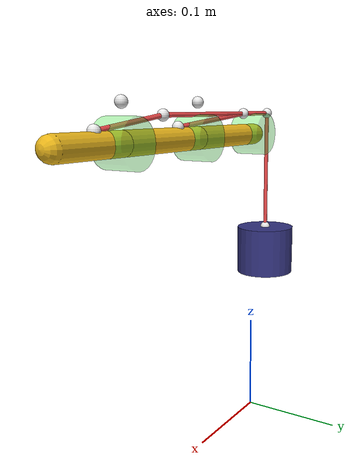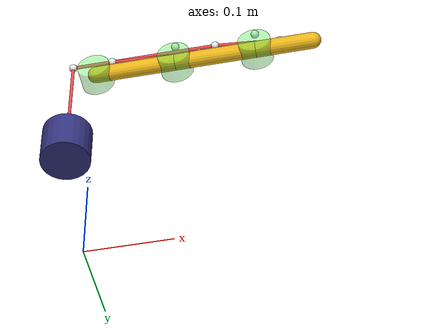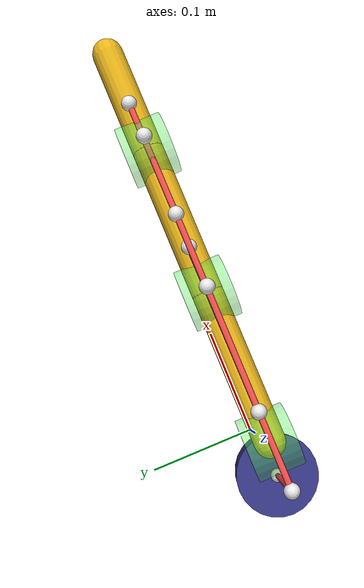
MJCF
<mujoco model="test">
    <compiler coordinate="global" />

    <default>
        <geom rgba=".9 .7 .1 1" size="0.01" />
        <site type="sphere" rgba=".9 .9 .9 1" size="0.005" />
        <joint type="hinge" axis="0 1 0" limited="true" range="0 60" solimplimit="0.95 0.95 0.1" />
    </default>

    <visual>
        <headlight diffuse=".7 .7 .7" />
    </visual>

    <worldbody>
        <body>
            <geom type="cylinder" fromto="-0.03 0 0.2  -0.03 0 0.15"
                size="0.03" rgba=".2 .2 .5 1" density="5000" />
            <joint type="slide" pos="-0.03 0 0.2" axis="0 0 1" limited="false" />
            <site name="s1" pos="-0.03 0 0.2" />
        </body>

        <site name="s2" pos="-0.03 0 0.32" />

        <body>
            <geom type="capsule" fromto="0 0 0.3  0.1 0 0.3" />
            <geom name="g1" type="cylinder" fromto="0.0 0.015 0.3  0.0 -0.015 0.3"
                size="0.02" rgba=".3 .9 .3 .4" />
            <joint pos="0 0 0.3" />
            <site name="s3" pos="0.02 0 0.32" />

            <body>
                <geom type="capsule" fromto="0.1 0 0.3  0.2 0 0.3" />
                <geom name="g2" type="cylinder" fromto="0.1 0.015 0.3  0.1 -0.015 0.3"
                    size="0.02" rgba=".3 .9 .3 .4" />
                <joint pos="0.1 0 0.3" />
                <site name="s4" pos="0.13 0 0.31" />
                <site name="s5" pos="0.15 0 0.32" />
                <site name="side2" pos="0.1 0 0.33" />

                <body>
                    <geom type="capsule" fromto="0.2 0 0.3  0.27 0 0.3" />
                    <geom name="g3" type="cylinder" fromto="0.2 0.015 0.3  0.2 -0.015 0.3"
                        size="0.02" rgba=".3 .9 .3 .4" />
                    <joint pos="0.2 0 0.3" />
                    <site name="s6" pos="0.23 0 0.31" />
                    <site name="side3" pos="0.2 0 0.33" />
                </body>
            </body>
        </body>
    </worldbody>

    <tendon>
        <spatial width="0.002" rgba=".95 .3 .3 1" limited="true" range="0 0.33">
            <site site="s1" />
            <site site="s2" />
            <geom geom="g1" />
            <site site="s3" />

            <pulley divisor="2" />
            <site site="s3" />
            <geom geom="g2" sidesite="side2" />
            <site site="s4" />

            <pulley divisor="2" />
            <site site="s3" />
            <geom geom="g2" sidesite="side2" />
            <site site="s5" />
            <geom geom="g3" sidesite="side3" />
            <site site="s6" />
        </spatial>
    </tendon>
</mujoco>
